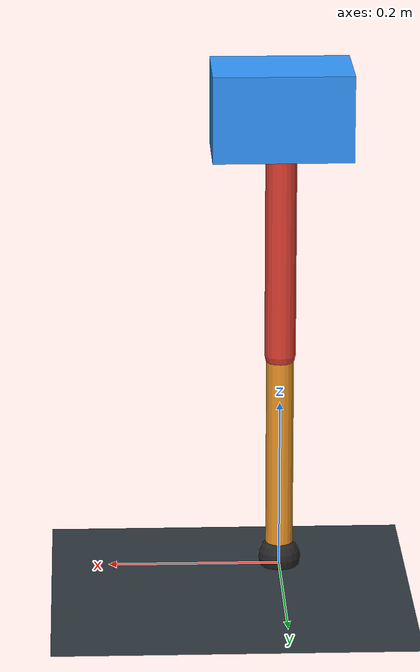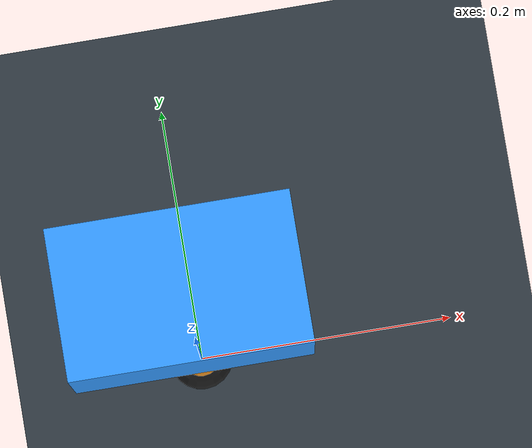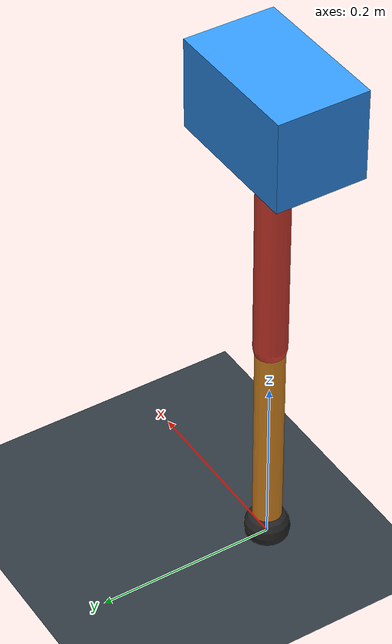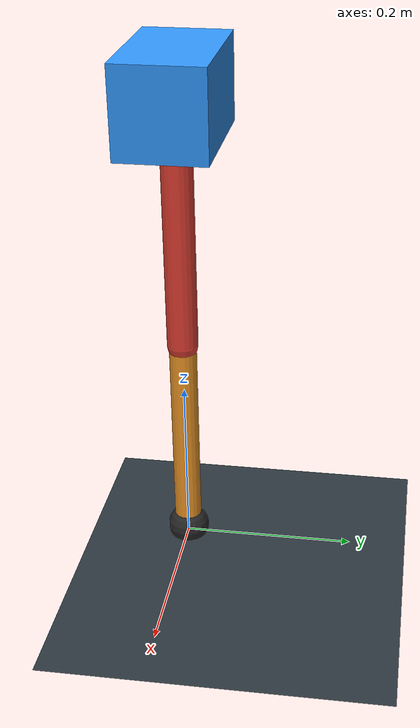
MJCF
<mujoco model="single_axis_two_bar">
  <compiler angle="radian" inertiafromgeom="true"/>
  <option timestep="0.001" integrator="implicitfast" gravity="0 0 -9.81"/>
  <default>
    <joint damping="0.08"/>
    <geom friction="1.2 0.01 0.0001" condim="3"/>
  </default>
  <worldbody>
    <geom name="floor" type="plane" size="5 5 0.1" rgba="0.18 0.22 0.25 1"/>
    <body name="carriage" pos="0 0 0.5519977529132678">
      <joint name="pole_slide" type="slide" axis="0 0 1"/>
      <geom name="payload" type="box" size="0.08 0.05 0.05" mass="2.9521632071629473" rgba="0.2 0.6 1 1"/>
      <body name="thigh" pos="0 0 0">
        <joint name="hip" type="hinge" axis="0 1 0"/>
        <geom name="thigh_link" type="capsule" fromto="0 0 0 0 0 -0.2929938985922089" size="0.018" mass="0.2087620243197362" rgba="0.9 0.25 0.2 1"/>
        <body name="shank" pos="0 0 -0.2929938985922089">
          <joint name="knee" type="hinge" axis="0 1 0"/>
          <geom name="shank_link" type="capsule" fromto="0 0 0 0 0 -0.250302753895696" size="0.016" mass="0.17834401960976443" rgba="0.95 0.6 0.15 1"/>
          <geom name="foot" type="sphere" pos="0 0 -0.250302753895696" size="0.025" mass="0.03" rgba="0.15 0.15 0.15 1"/>
          <site name="toe" pos="0 0 -0.250302753895696" size="0.008"/>
        </body>
      </body>
    </body>
  </worldbody>
  <actuator>
    <motor name="hip_motor" joint="hip" ctrlrange="-19.243984025889915 19.243984025889915"/>
    <motor name="knee_motor" joint="knee" ctrlrange="-58.21213899159722 58.21213899159722"/>
  </actuator>
</mujoco>
